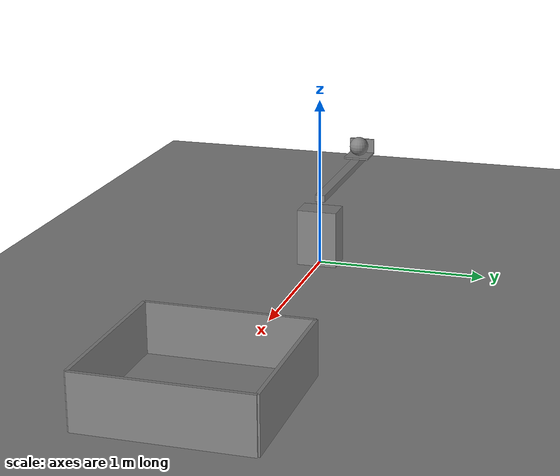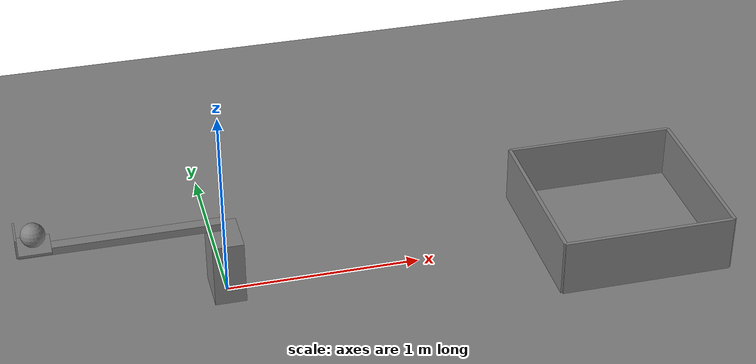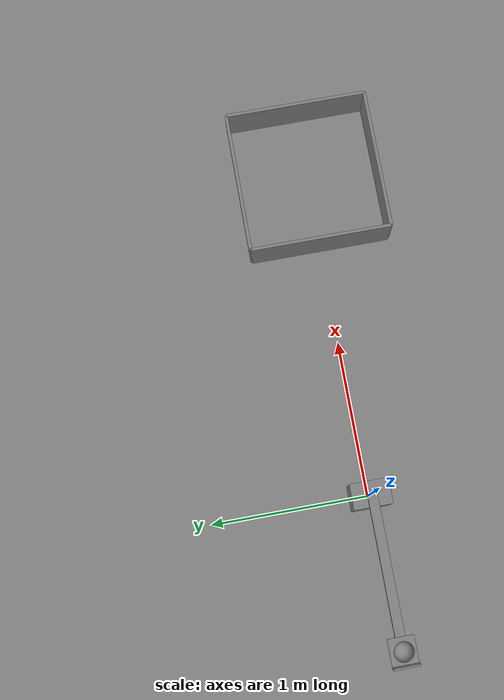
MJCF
<mujoco model="catapult_fixture">
  <option timestep="0.002"/>
  <worldbody>
    <geom name="floor" type="plane" size="8 8 0.1"/>
    <geom name="catapult_base" type="box" pos="0 0 0.170" size="0.08 0.12 0.170"/>
    <body name="catapult_arm" pos="0 0 0.4">
      <joint name="catapult_hinge" type="hinge" axis="0 1 0" range="0 55" stiffness="2.75" springref="150" damping="0.05" armature="0.01"/>
      <geom name="catapult_beam" type="box" pos="-0.500 0 0" size="0.500 0.03 0.02" mass="0.3"/>
      <geom name="catapult_cup_floor" type="box" pos="-0.920 0 0.025" size="0.08 0.08 0.005" mass="0.02"/>
      <geom name="catapult_cup_back" type="box" pos="-1.005 0 0.07" size="0.005 0.08 0.05" mass="0.01"/>
    </body>
    <body name="ball" pos="-0.920 0 0.4895">
      <freejoint/>
      <geom name="ball" type="sphere" size="0.06" mass="0.15" condim="6" friction="0.8 0.01 0.004" solref="0.01 1"/>
    </body>
    <body name="bucket" pos="2.08 0 0">
      <geom name="bucket_base" type="box" pos="0 0 0.01" size="0.45 0.45 0.01"/>
      <geom name="bucket_near" type="box" pos="-0.45 0 0.15" size="0.01 0.45 0.15"/>
      <geom name="bucket_far" type="box" pos="0.45 0 0.15" size="0.01 0.45 0.15"/>
      <geom name="bucket_left" type="box" pos="0 0.45 0.15" size="0.45 0.01 0.15"/>
      <geom name="bucket_right" type="box" pos="0 -0.45 0.15" size="0.45 0.01 0.15"/>
    </body>
  </worldbody>
</mujoco>
